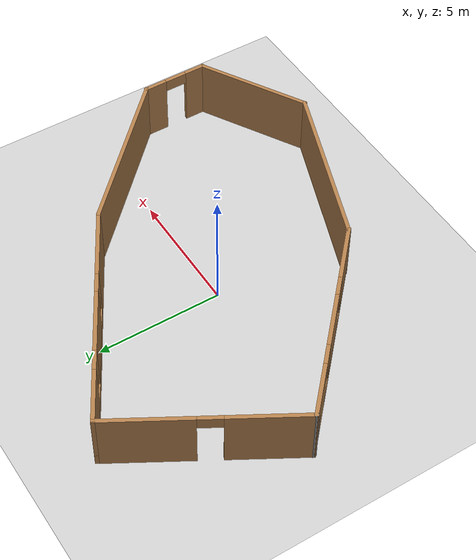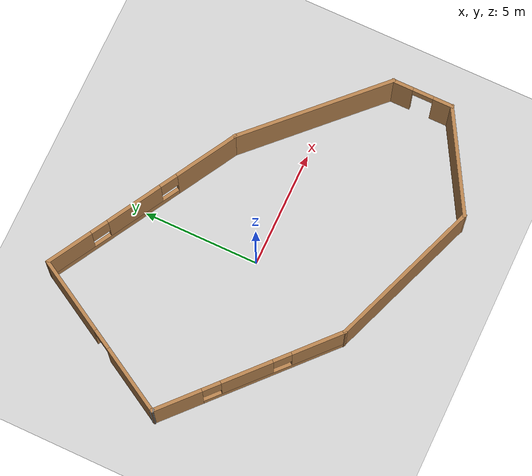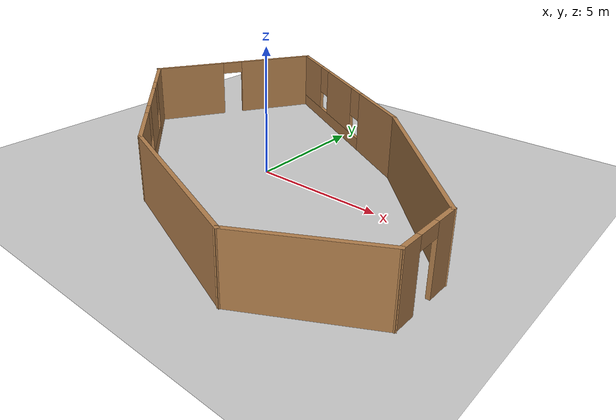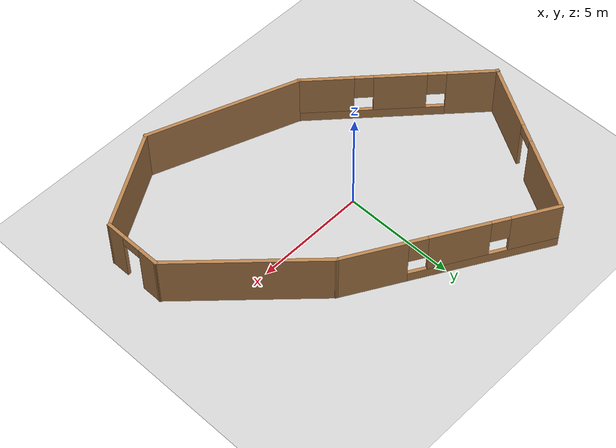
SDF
<sdf version="1.7">
 <world name="default">
  <light name="sun" type="directional">
   <pose>0 0 10 0 -0 0</pose>
   <diffuse>0.8 0.8 0.8 1</diffuse>
   <specular>0.2 0.2 0.2 1</specular>
   <attenuation>
    <range>1000</range>
    <constant>0.9</constant>
    <linear>0.01</linear>
    <quadratic>0.001</quadratic>
   </attenuation>
   <direction>-0.5 0.1 -0.9</direction>
   <spot><inner_angle>0</inner_angle><outer_angle>0</outer_angle><falloff>0</falloff></spot>
  </light>
  <model name="ground_plane">
   <static>1</static>
   <link name="link">
    <collision name="collision">
     <geometry><plane><normal>0 0 1</normal><size>100 100</size></plane></geometry>
     <surface><friction><ode><mu>100</mu><mu2>50</mu2></ode></friction></surface>
    </collision>
    <visual name="visual">
     <cast_shadows>0</cast_shadows>
     <geometry><plane><normal>0 0 1</normal><size>100 100</size></plane></geometry>
     <material>
      <script><uri>file://media/materials/scripts/gazebo.material</uri><name>Gazebo/Grey</name></script>
     </material>
    </visual>
   </link>
  </model>
  <gravity>0 0 -9.8</gravity>
  <magnetic_field>6e-06 2.3e-05 -4.2e-05</magnetic_field>
  <atmosphere type="adiabatic"/>
  <physics type="ode">
   <max_step_size>0.001</max_step_size>
   <real_time_factor>1</real_time_factor>
   <real_time_update_rate>1000</real_time_update_rate>
  </physics>
  <scene><ambient>0.4 0.4 0.4 1</ambient><background>0.7 0.7 0.7 1</background><shadows>1</shadows></scene>
  <audio><device>default</device></audio>
  <spherical_coordinates>
   <surface_model>EARTH_WGS84</surface_model>
   <latitude_deg>0</latitude_deg>
   <longitude_deg>0</longitude_deg>
   <elevation>0</elevation>
   <heading_deg>0</heading_deg>
  </spherical_coordinates>
  <model name="my_home">
   <pose>0.530195 0.149475 0 0 -0 0</pose>
   <link name="Wall_1">
    <collision name="Wall_1_Collision">
     <geometry><box><size>6.93142 0.15 2.5</size></box></geometry>
     <pose>0 0 1.25 0 -0 0</pose>
    </collision>
    <visual name="Wall_1_Visual">
     <pose>0 0 1.25 0 -0 0</pose>
     <geometry><box><size>6.93142 0.15 2.5</size></box></geometry>
     <material>
      <script><uri>file://media/materials/scripts/gazebo.material</uri><name>Gazebo/Wood</name></script>
      <ambient>1 1 1 1</ambient>
     </material>
     <meta><layer>0</layer></meta>
    </visual>
    <pose>1.03715 -5.96234 0 0 -0 -0.356862</pose>
   </link>
   <link name="Wall_2">
    <collision name="Wall_2_Collision">
     <geometry><box><size>4.75 0.15 2.5</size></box></geometry>
     <pose>0 0 1.25 0 -0 0</pose>
    </collision>
    <visual name="Wall_2_Visual">
     <pose>0 0 1.25 0 -0 0</pose>
     <geometry><box><size>4.75 0.15 2.5</size></box></geometry>
     <material>
      <script><uri>file://media/materials/scripts/gazebo.material</uri><name>Gazebo/Wood</name></script>
      <ambient>1 1 1 1</ambient>
     </material>
     <meta><layer>0</layer></meta>
    </visual>
    <pose>6.20609 -5.99684 0 0 -0 0.523599</pose>
   </link>
   <link name="Wall_3">
    <pose>8.19795 -3.54684 0 0 -0 1.5708</pose>
    <visual name="Wall_3_Visual_0">
     <pose>-0.927505 0 1.25 0 -0 0</pose>
     <geometry><box><size>0.89499 0.15 2.5</size></box></geometry>
     <material>
      <script><uri>file://media/materials/scripts/gazebo.material</uri><name>Gazebo/Wood</name></script>
      <ambient>1 1 1 1</ambient>
     </material>
     <meta><layer>0</layer></meta>
    </visual>
    <collision name="Wall_3_Collision_0">
     <geometry><box><size>0.89499 0.15 2.5</size></box></geometry>
     <pose>-0.927505 0 1.25 0 -0 0</pose>
    </collision>
    <visual name="Wall_3_Visual_1">
     <pose>0.897495 0 1.25 0 -0 0</pose>
     <geometry><box><size>0.95501 0.15 2.5</size></box></geometry>
     <material>
      <script><uri>file://media/materials/scripts/gazebo.material</uri><name>Gazebo/Wood</name></script>
      <ambient>1 1 1 1</ambient>
     </material>
     <meta><layer>0</layer></meta>
    </visual>
    <collision name="Wall_3_Collision_1">
     <geometry><box><size>0.95501 0.15 2.5</size></box></geometry>
     <pose>0.897495 0 1.25 0 -0 0</pose>
    </collision>
    <visual name="Wall_3_Visual_2">
     <pose>-0.03001 0 2.25 0 -0 0</pose>
     <geometry><box><size>0.9 0.15 0.5</size></box></geometry>
     <material>
      <script><uri>file://media/materials/scripts/gazebo.material</uri><name>Gazebo/Wood</name></script>
      <ambient>1 1 1 1</ambient>
     </material>
     <meta><layer>0</layer></meta>
    </visual>
    <collision name="Wall_3_Collision_2">
     <geometry><box><size>0.9 0.15 0.5</size></box></geometry>
     <pose>-0.03001 0 2.25 0 -0 0</pose>
    </collision>
   </link>
   <link name="Wall_4">
    <collision name="Wall_4_Collision">
     <geometry><box><size>7 0.15 2.5</size></box></geometry>
     <pose>0 0 1.25 0 -0 0</pose>
    </collision>
    <visual name="Wall_4_Visual">
     <pose>0 0 1.25 0 -0 0</pose>
     <geometry><box><size>7 0.15 2.5</size></box></geometry>
     <material>
      <script><uri>file://media/materials/scripts/gazebo.material</uri><name>Gazebo/Wood</name></script>
      <ambient>1 1 1 1</ambient>
     </material>
     <meta><layer>0</layer></meta>
    </visual>
    <pose>5.77611 0.175 0 0 -0 2.35619</pose>
   </link>
   <link name="Wall_5">
    <pose>-0.586148 4.87184 0 0 -0 2.61799</pose>
    <visual name="Wall_5_Visual_0">
     <pose>-3.15168 0 1.25 0 -0 0</pose>
     <geometry><box><size>2.94664 0.15 2.5</size></box></geometry>
     <material>
      <script><uri>file://media/materials/scripts/gazebo.material</uri><name>Gazebo/Wood</name></script>
      <ambient>1 1 1 1</ambient>
     </material>
     <meta><layer>0</layer></meta>
    </visual>
    <collision name="Wall_5_Collision_0">
     <geometry><box><size>2.94664 0.15 2.5</size></box></geometry>
     <pose>-3.15168 0 1.25 0 -0 0</pose>
    </collision>
    <visual name="Wall_5_Visual_1">
     <pose>1.47332 0 0.25 0 -0 0</pose>
     <geometry><box><size>6.30336 0.15 0.5</size></box></geometry>
     <material>
      <script><uri>file://media/materials/scripts/gazebo.material</uri><name>Gazebo/Wood</name></script>
      <ambient>1 1 1 1</ambient>
     </material>
     <meta><layer>0</layer></meta>
    </visual>
    <collision name="Wall_5_Collision_1">
     <geometry><box><size>6.30336 0.15 0.5</size></box></geometry>
     <pose>1.47332 0 0.25 0 -0 0</pose>
    </collision>
    <visual name="Wall_5_Visual_2">
     <pose>0.397858 0 1.5 0 -0 0</pose>
     <geometry><box><size>2.55244 0.15 2</size></box></geometry>
     <material>
      <script><uri>file://media/materials/scripts/gazebo.material</uri><name>Gazebo/Wood</name></script>
      <ambient>1 1 1 1</ambient>
     </material>
     <meta><layer>0</layer></meta>
    </visual>
    <collision name="Wall_5_Collision_2">
     <geometry><box><size>2.55244 0.15 2</size></box></geometry>
     <pose>0.397858 0 1.5 0 -0 0</pose>
    </collision>
    <visual name="Wall_5_Visual_3">
     <pose>3.54954 0 1.5 0 -0 0</pose>
     <geometry><box><size>2.15092 0.15 2</size></box></geometry>
     <material>
      <script><uri>file://media/materials/scripts/gazebo.material</uri><name>Gazebo/Wood</name></script>
      <ambient>1 1 1 1</ambient>
     </material>
     <meta><layer>0</layer></meta>
    </visual>
    <collision name="Wall_5_Collision_3">
     <geometry><box><size>2.15092 0.15 2</size></box></geometry>
     <pose>3.54954 0 1.5 0 -0 0</pose>
    </collision>
    <visual name="Wall_5_Visual_4">
     <pose>-1.27836 0 1.9 0 -0 0</pose>
     <geometry><box><size>0.8 0.15 1.2</size></box></geometry>
     <material>
      <script><uri>file://media/materials/scripts/gazebo.material</uri><name>Gazebo/Wood</name></script>
      <ambient>1 1 1 1</ambient>
     </material>
     <meta><layer>0</layer></meta>
    </visual>
    <collision name="Wall_5_Collision_4">
     <geometry><box><size>0.8 0.15 1.2</size></box></geometry>
     <pose>-1.27836 0 1.9 0 -0 0</pose>
    </collision>
    <visual name="Wall_5_Visual_5">
     <pose>2.07408 0 1.9 0 -0 0</pose>
     <geometry><box><size>0.8 0.15 1.2</size></box></geometry>
     <material>
      <script><uri>file://media/materials/scripts/gazebo.material</uri><name>Gazebo/Wood</name></script>
      <ambient>1 1 1 1</ambient>
     </material>
     <meta><layer>0</layer></meta>
    </visual>
    <collision name="Wall_5_Collision_5">
     <geometry><box><size>0.8 0.15 1.2</size></box></geometry>
     <pose>2.07408 0 1.9 0 -0 0</pose>
    </collision>
   </link>
   <link name="Wall_6">
    <pose>-6.36406 3.9642 0 0 -0 -2.0944</pose>
    <visual name="Wall_6_Visual_0">
     <pose>-2.01235 0 1.25 0 -0 0</pose>
     <geometry><box><size>3.4753 0.15 2.5</size></box></geometry>
     <material>
      <script><uri>file://media/materials/scripts/gazebo.material</uri><name>Gazebo/Wood</name></script>
      <ambient>1 1 1 1</ambient>
     </material>
     <meta><layer>0</layer></meta>
    </visual>
    <collision name="Wall_6_Collision_0">
     <geometry><box><size>3.4753 0.15 2.5</size></box></geometry>
     <pose>-2.01235 0 1.25 0 -0 0</pose>
    </collision>
    <visual name="Wall_6_Visual_1">
     <pose>2.18765 0 1.25 0 -0 0</pose>
     <geometry><box><size>3.1247 0.15 2.5</size></box></geometry>
     <material>
      <script><uri>file://media/materials/scripts/gazebo.material</uri><name>Gazebo/Wood</name></script>
      <ambient>1 1 1 1</ambient>
     </material>
     <meta><layer>0</layer></meta>
    </visual>
    <collision name="Wall_6_Collision_1">
     <geometry><box><size>3.1247 0.15 2.5</size></box></geometry>
     <pose>2.18765 0 1.25 0 -0 0</pose>
    </collision>
    <visual name="Wall_6_Visual_2">
     <pose>0.175303 0 2.25 0 -0 0</pose>
     <geometry><box><size>0.9 0.15 0.5</size></box></geometry>
     <material>
      <script><uri>file://media/materials/scripts/gazebo.material</uri><name>Gazebo/Wood</name></script>
      <ambient>1 1 1 1</ambient>
     </material>
     <meta><layer>0</layer></meta>
    </visual>
    <collision name="Wall_6_Collision_2">
     <geometry><box><size>0.9 0.15 0.5</size></box></geometry>
     <pose>0.175303 0 2.25 0 -0 0</pose>
    </collision>
   </link>
   <link name="Wall_7">
    <collision name="Wall_7_Collision">
     <geometry><box><size>0.16 0.15 2.5</size></box></geometry>
     <pose>0 0 1.25 0 -0 0</pose>
    </collision>
    <visual name="Wall_7_Visual">
     <pose>0 0 1.25 0 -0 0</pose>
     <geometry><box><size>0.16 0.15 2.5</size></box></geometry>
     <material>
      <script><uri>file://media/materials/scripts/gazebo.material</uri><name>Gazebo/Grey</name></script>
      <ambient>1 1 1 1</ambient>
     </material>
     <meta><layer>0</layer></meta>
    </visual>
    <pose>-8.19656 0.781554 0 0 -0 0</pose>
   </link>
   <link name="Wall_8">
    <pose>-5.16575 -1.99815 0 0 -0 -0.743031</pose>
    <visual name="Wall_8_Visual_0">
     <pose>-3.09741 0 1.25 0 -0 0</pose>
     <geometry><box><size>2.17279 0.15 2.5</size></box></geometry>
     <material>
      <script><uri>file://media/materials/scripts/gazebo.material</uri><name>Gazebo/Wood</name></script>
      <ambient>1 1 1 1</ambient>
     </material>
     <meta><layer>0</layer></meta>
    </visual>
    <collision name="Wall_8_Collision_0">
     <geometry><box><size>2.17279 0.15 2.5</size></box></geometry>
     <pose>-3.09741 0 1.25 0 -0 0</pose>
    </collision>
    <visual name="Wall_8_Visual_1">
     <pose>1.08639 0 0.25 0 -0 0</pose>
     <geometry><box><size>6.19482 0.15 0.5</size></box></geometry>
     <material>
      <script><uri>file://media/materials/scripts/gazebo.material</uri><name>Gazebo/Wood</name></script>
      <ambient>1 1 1 1</ambient>
     </material>
     <meta><layer>0</layer></meta>
    </visual>
    <collision name="Wall_8_Collision_1">
     <geometry><box><size>6.19482 0.15 0.5</size></box></geometry>
     <pose>1.08639 0 0.25 0 -0 0</pose>
    </collision>
    <visual name="Wall_8_Visual_2">
     <pose>-0.097841 0 1.5 0 -0 0</pose>
     <geometry><box><size>2.22636 0.15 2</size></box></geometry>
     <material>
      <script><uri>file://media/materials/scripts/gazebo.material</uri><name>Gazebo/Wood</name></script>
      <ambient>1 1 1 1</ambient>
     </material>
     <meta><layer>0</layer></meta>
    </visual>
    <collision name="Wall_8_Collision_2">
     <geometry><box><size>2.22636 0.15 2</size></box></geometry>
     <pose>-0.097841 0 1.5 0 -0 0</pose>
    </collision>
    <visual name="Wall_8_Visual_3">
     <pose>2.99957 0 1.5 0 -0 0</pose>
     <geometry><box><size>2.36847 0.15 2</size></box></geometry>
     <material>
      <script><uri>file://media/materials/scripts/gazebo.material</uri><name>Gazebo/Wood</name></script>
      <ambient>1 1 1 1</ambient>
     </material>
     <meta><layer>0</layer></meta>
    </visual>
    <collision name="Wall_8_Collision_3">
     <geometry><box><size>2.36847 0.15 2</size></box></geometry>
     <pose>2.99957 0 1.5 0 -0 0</pose>
    </collision>
    <visual name="Wall_8_Visual_4">
     <pose>-1.61102 0 1.9 0 -0 0</pose>
     <geometry><box><size>0.8 0.15 1.2</size></box></geometry>
     <material>
      <script><uri>file://media/materials/scripts/gazebo.material</uri><name>Gazebo/Wood</name></script>
      <ambient>1 1 1 1</ambient>
     </material>
     <meta><layer>0</layer></meta>
    </visual>
    <collision name="Wall_8_Collision_4">
     <geometry><box><size>0.8 0.15 1.2</size></box></geometry>
     <pose>-1.61102 0 1.9 0 -0 0</pose>
    </collision>
    <visual name="Wall_8_Visual_5">
     <pose>1.41534 0 1.9 0 -0 0</pose>
     <geometry><box><size>0.8 0.15 1.2</size></box></geometry>
     <material>
      <script><uri>file://media/materials/scripts/gazebo.material</uri><name>Gazebo/Wood</name></script>
      <ambient>1 1 1 1</ambient>
     </material>
     <meta><layer>0</layer></meta>
    </visual>
    <collision name="Wall_8_Collision_5">
     <geometry><box><size>0.8 0.15 1.2</size></box></geometry>
     <pose>1.41534 0 1.9 0 -0 0</pose>
    </collision>
   </link>
   <static>1</static>
  </model>
 </world>
</sdf>
